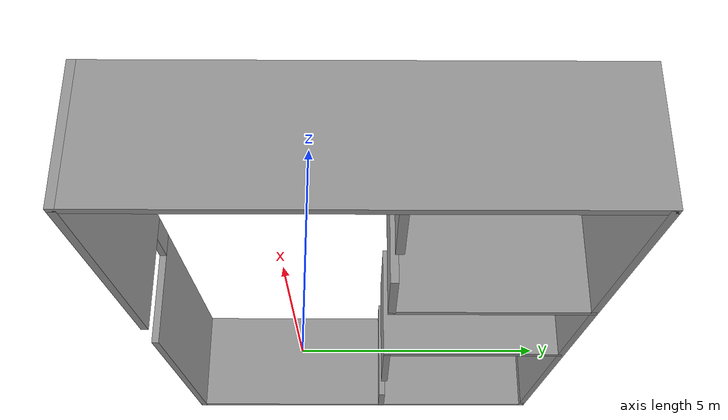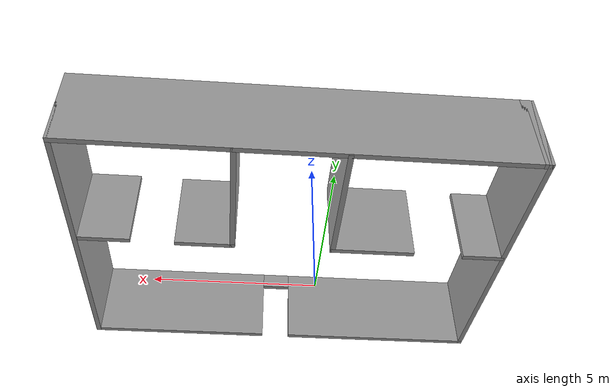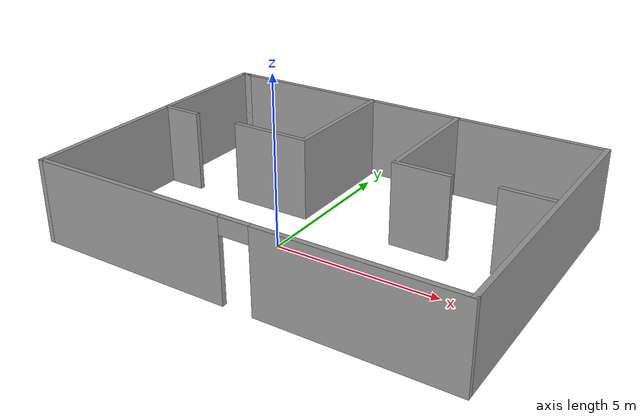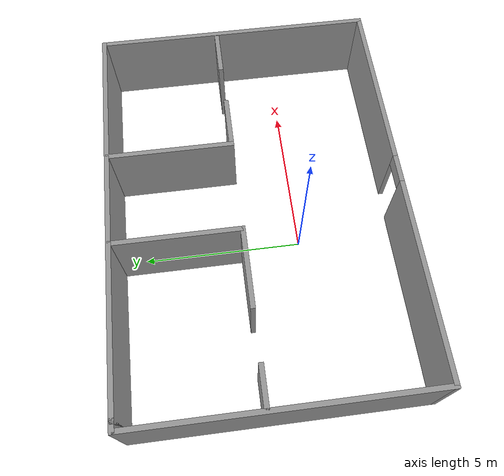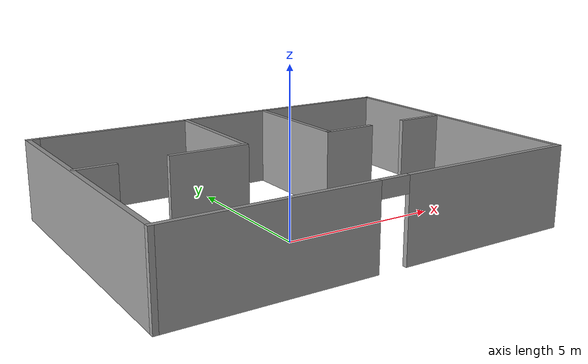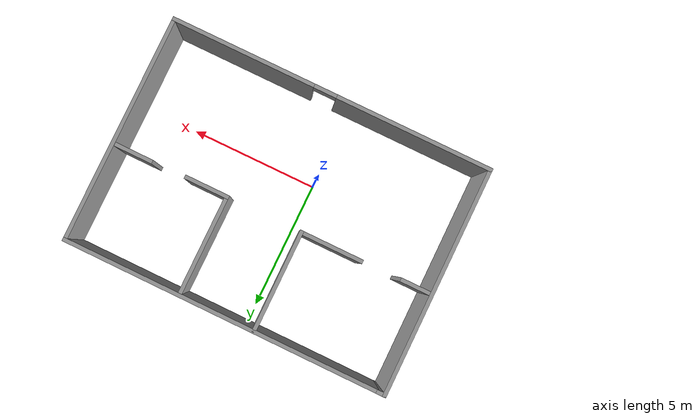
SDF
<?xml version='1.0'?>
<sdf version='1.6'>
  <model name='room'>
    <pose frame=''>0.836246 1.31623 0 0 -0 0</pose>
    <link name='Wall_11'>
      <collision name='Wall_11_Collision'>
        <geometry>
          <box>
            <size>2.5 0.15 2.5</size>
          </box>
        </geometry>
        <pose frame=''>0 0 1.25 0 -0 0</pose>
      </collision>
      <visual name='Wall_11_Visual'>
        <pose frame=''>0 0 1.25 0 -0 0</pose>
        <geometry>
          <box>
            <size>2.5 0.15 2.5</size>
          </box>
        </geometry>
        <material>
          <script>
            <uri>file://media/materials/scripts/gazebo.material</uri>
            <name>Gazebo/Grey</name>
          </script>
          <ambient>1 1 1 1</ambient>
        </material>
        <meta>
          <layer>0</layer>
        </meta>
      </visual>
      <pose frame=''>-2.35115 0.532568 0 0 -0 0</pose>
    </link>
    <link name='Wall_12'>
      <collision name='Wall_12_Collision'>
        <geometry>
          <box>
            <size>4 0.15 2.5</size>
          </box>
        </geometry>
        <pose frame=''>0 0 1.25 0 -0 0</pose>
      </collision>
      <visual name='Wall_12_Visual'>
        <pose frame=''>0 0 1.25 0 -0 0</pose>
        <geometry>
          <box>
            <size>4 0.15 2.5</size>
          </box>
        </geometry>
        <material>
          <script>
            <uri>file://media/materials/scripts/gazebo.material</uri>
            <name>Gazebo/Grey</name>
          </script>
          <ambient>1 1 1 1</ambient>
        </material>
        <meta>
          <layer>0</layer>
        </meta>
      </visual>
      <pose frame=''>-1.17615 2.45757 0 0 -0 1.5708</pose>
    </link>
    <link name='Wall_14'>
      <collision name='Wall_14_Collision'>
        <geometry>
          <box>
            <size>4 0.15 2.5</size>
          </box>
        </geometry>
        <pose frame=''>0 0 1.25 0 -0 0</pose>
      </collision>
      <visual name='Wall_14_Visual'>
        <pose frame=''>0 0 1.25 0 -0 0</pose>
        <geometry>
          <box>
            <size>4 0.15 2.5</size>
          </box>
        </geometry>
        <material>
          <script>
            <uri>file://media/materials/scripts/gazebo.material</uri>
            <name>Gazebo/Grey</name>
          </script>
          <ambient>1 1 1 1</ambient>
        </material>
        <meta>
          <layer>0</layer>
        </meta>
      </visual>
      <pose frame=''>1.76483 2.46855 0 0 -0 -1.5708</pose>
    </link>
    <link name='Wall_15'>
      <collision name='Wall_15_Collision'>
        <geometry>
          <box>
            <size>1.75 0.15 2.5</size>
          </box>
        </geometry>
        <pose frame=''>0 0 1.25 0 -0 0</pose>
      </collision>
      <visual name='Wall_15_Visual'>
        <pose frame=''>0 0 1.25 0 -0 0</pose>
        <geometry>
          <box>
            <size>1.75 0.15 2.5</size>
          </box>
        </geometry>
        <material>
          <script>
            <uri>file://media/materials/scripts/gazebo.material</uri>
            <name>Gazebo/Grey</name>
          </script>
          <ambient>1 1 1 1</ambient>
        </material>
        <meta>
          <layer>0</layer>
        </meta>
      </visual>
      <pose frame=''>2.56483 0.543548 0 0 -0 0</pose>
    </link>
    <link name='Wall_17'>
      <collision name='Wall_17_Collision'>
        <geometry>
          <box>
            <size>1.5 0.15 2.5</size>
          </box>
        </geometry>
        <pose frame=''>0 0 1.25 0 -0 0</pose>
      </collision>
      <visual name='Wall_17_Visual'>
        <pose frame=''>0 0 1.25 0 -0 0</pose>
        <geometry>
          <box>
            <size>1.5 0.15 2.5</size>
          </box>
        </geometry>
        <material>
          <script>
            <uri>file://media/materials/scripts/gazebo.material</uri>
            <name>Gazebo/Grey</name>
          </script>
          <ambient>1 1 1 1</ambient>
        </material>
        <meta>
          <layer>0</layer>
        </meta>
      </visual>
      <pose frame=''>5.46664 0.580234 0 0 -0 0</pose>
    </link>
    <link name='Wall_3'>
      <collision name='Wall_3_Collision'>
        <geometry>
          <box>
            <size>12.5 0.15 2.5</size>
          </box>
        </geometry>
        <pose frame=''>0 0 1.25 0 -0 0</pose>
      </collision>
      <visual name='Wall_3_Visual'>
        <pose frame=''>0 0 1.25 0 -0 0</pose>
        <geometry>
          <box>
            <size>12.5 0.15 2.5</size>
          </box>
        </geometry>
        <material>
          <script>
            <uri>file://media/materials/scripts/gazebo.material</uri>
            <name>Gazebo/Grey</name>
          </script>
          <ambient>1 1 1 1</ambient>
        </material>
        <meta>
          <layer>0</layer>
        </meta>
      </visual>
      <pose frame=''>0.125 4.425 0 0 -0 0</pose>
    </link>
    <link name='Wall_4'>
      <collision name='Wall_4_Collision'>
        <geometry>
          <box>
            <size>9 0.15 2.5</size>
          </box>
        </geometry>
        <pose frame=''>0 0 1.25 0 -0 0</pose>
      </collision>
      <visual name='Wall_4_Visual'>
        <pose frame=''>0 0 1.25 0 -0 0</pose>
        <geometry>
          <box>
            <size>9 0.15 2.5</size>
          </box>
        </geometry>
        <material>
          <script>
            <uri>file://media/materials/scripts/gazebo.material</uri>
            <name>Gazebo/Grey</name>
          </script>
          <ambient>1 1 1 1</ambient>
        </material>
        <meta>
          <layer>0</layer>
        </meta>
      </visual>
      <pose frame=''>6.3 -0 0 0 -0 -1.5708</pose>
    </link>
    <link name='Wall_5'>
      <pose frame=''>0 -4.425 0 0 -0 3.14159</pose>
      <visual name='Wall_5_Visual_0'>
        <pose frame=''>-3.53225 0 1.25 0 -0 0</pose>
        <geometry>
          <box>
            <size>5.6855 0.15 2.5</size>
          </box>
        </geometry>
        <material>
          <script>
            <uri>file://media/materials/scripts/gazebo.material</uri>
            <name>Gazebo/Grey</name>
          </script>
          <ambient>1 1 1 1</ambient>
        </material>
        <meta>
          <layer>0</layer>
        </meta>
      </visual>
      <collision name='Wall_5_Collision_0'>
        <geometry>
          <box>
            <size>5.6855 0.15 2.5</size>
          </box>
        </geometry>
        <pose frame=''>-3.53225 0 1.25 0 -0 0</pose>
      </collision>
      <visual name='Wall_5_Visual_1'>
        <pose frame=''>3.29275 0 1.25 0 -0 0</pose>
        <geometry>
          <box>
            <size>6.1645 0.15 2.5</size>
          </box>
        </geometry>
        <material>
          <script>
            <uri>file://media/materials/scripts/gazebo.material</uri>
            <name>Gazebo/Grey</name>
          </script>
          <ambient>1 1 1 1</ambient>
        </material>
        <meta>
          <layer>0</layer>
        </meta>
      </visual>
      <collision name='Wall_5_Collision_1'>
        <geometry>
          <box>
            <size>6.1645 0.15 2.5</size>
          </box>
        </geometry>
        <pose frame=''>3.29275 0 1.25 0 -0 0</pose>
      </collision>
      <visual name='Wall_5_Visual_2'>
        <pose frame=''>-0.2395 0 2.25 0 -0 0</pose>
        <geometry>
          <box>
            <size>0.9 0.15 0.5</size>
          </box>
        </geometry>
        <material>
          <script>
            <uri>file://media/materials/scripts/gazebo.material</uri>
            <name>Gazebo/Grey</name>
          </script>
          <ambient>1 1 1 1</ambient>
        </material>
        <meta>
          <layer>0</layer>
        </meta>
      </visual>
      <collision name='Wall_5_Collision_2'>
        <geometry>
          <box>
            <size>0.9 0.15 0.5</size>
          </box>
        </geometry>
        <pose frame=''>-0.2395 0 2.25 0 -0 0</pose>
      </collision>
    </link>
    <link name='Wall_6'>
      <collision name='Wall_6_Collision'>
        <geometry>
          <box>
            <size>9 0.15 2.5</size>
          </box>
        </geometry>
        <pose frame=''>0 0 1.25 0 -0 0</pose>
      </collision>
      <visual name='Wall_6_Visual'>
        <pose frame=''>0 0 1.25 0 -0 0</pose>
        <geometry>
          <box>
            <size>9 0.15 2.5</size>
          </box>
        </geometry>
        <material>
          <script>
            <uri>file://media/materials/scripts/gazebo.material</uri>
            <name>Gazebo/Grey</name>
          </script>
          <ambient>1 1 1 1</ambient>
        </material>
        <meta>
          <layer>0</layer>
        </meta>
      </visual>
      <pose frame=''>-6.3 -0 0 0 -0 1.5708</pose>
    </link>
    <link name='Wall_7'>
      <collision name='Wall_7_Collision'>
        <geometry>
          <box>
            <size>0.4 0.15 2.5</size>
          </box>
        </geometry>
        <pose frame=''>0 0 1.25 0 -0 0</pose>
      </collision>
      <visual name='Wall_7_Visual'>
        <pose frame=''>0 0 1.25 0 -0 0</pose>
        <geometry>
          <box>
            <size>0.4 0.15 2.5</size>
          </box>
        </geometry>
        <material>
          <script>
            <uri>file://media/materials/scripts/gazebo.material</uri>
            <name>Gazebo/Grey</name>
          </script>
          <ambient>1 1 1 1</ambient>
        </material>
        <meta>
          <layer>0</layer>
        </meta>
      </visual>
      <pose frame=''>-6.175 4.425 0 0 -0 0</pose>
    </link>
    <link name='Wall_9'>
      <collision name='Wall_9_Collision'>
        <geometry>
          <box>
            <size>1.25 0.15 2.5</size>
          </box>
        </geometry>
        <pose frame=''>0 0 1.25 0 -0 0</pose>
      </collision>
      <visual name='Wall_9_Visual'>
        <pose frame=''>0 0 1.25 0 -0 0</pose>
        <geometry>
          <box>
            <size>1.25 0.15 2.5</size>
          </box>
        </geometry>
        <material>
          <script>
            <uri>file://media/materials/scripts/gazebo.material</uri>
            <name>Gazebo/Grey</name>
          </script>
          <ambient>1 1 1 1</ambient>
        </material>
        <meta>
          <layer>0</layer>
        </meta>
      </visual>
      <pose frame=''>-5.69313 0.508735 0 0 -0 0</pose>
    </link>
    <static>1</static>
  </model>
</sdf>
